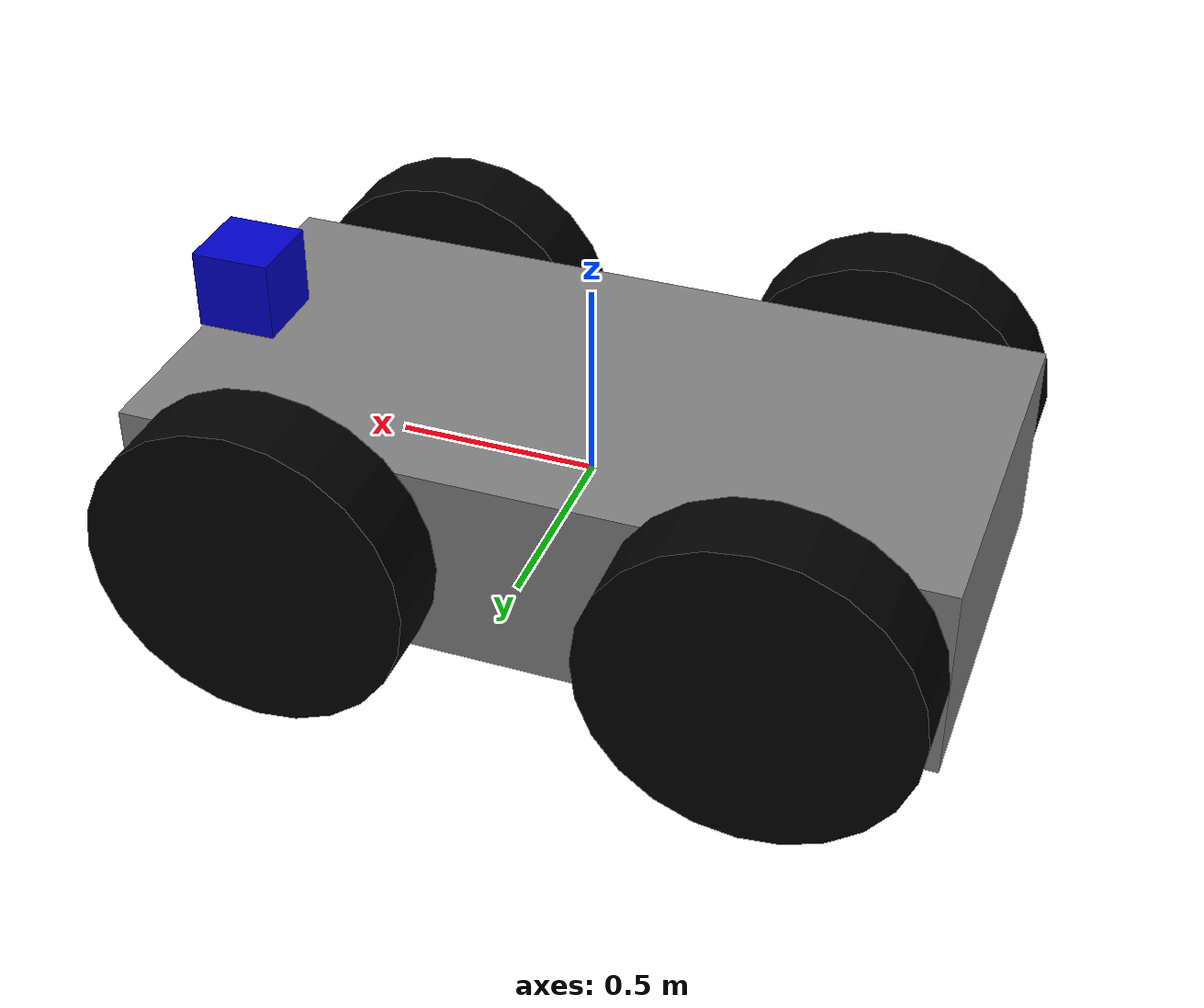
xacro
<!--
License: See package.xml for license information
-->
<?xml version="1.0"?>

<robot name="aruco_bot" xmlns:xacro="http://www.ros.org/wiki/xacro">

  <!-- External File Includes                    -->

  <xacro:include filename="$(find aruco_visual_servoing)/urdf/aruco_bot_skid_steer.gazebo.xacro"/>
  <xacro:include filename="$(find aruco_visual_servoing)/urdf/materials.xacro"/>

  <!-- Robot Geometry Parameters                 -->

  <xacro:property name="WHEEL_RADIUS" value="0.4"/>        <!-- meters -->
  <xacro:property name="WHEEL_WIDTH" value="0.2"/>         <!-- meters -->
  <xacro:property name="BASE_LENGTH" value="2.0"/>         <!-- meters -->
  <xacro:property name="BASE_WIDTH" value="1.0"/>          <!-- meters -->
  <xacro:property name="BASE_HEIGHT" value="0.5"/>         <!-- meters -->
  <xacro:property name="WHEEL_SEPARATION" value="${BASE_WIDTH + WHEEL_WIDTH}"/>
  <xacro:property name="WHEEL_X_OFFSET" value="${(BASE_LENGTH/2) - WHEEL_RADIUS}"/>

  <!-- Mass / inertia approximations -->
  <xacro:property name="BASE_MASS" value="5.0"/>
  <xacro:property name="WHEEL_MASS" value="2.0"/>

  <!-- Mathematical Constants                    -->

  <xacro:property name="PI" value="3.14159265359"/>

  <!-- Base Footprint and Chassis                -->

  <link name="base_footprint"/>

  <joint name="base_joint" type="fixed">
    <parent link="base_footprint"/>
    <child link="base_link"/>
    <origin xyz="0.0 0 0" rpy="0 0 0.0"/>
  </joint>

  <link name="base_link">
    <visual>
      <geometry>
        <box size="${BASE_LENGTH} ${BASE_WIDTH} ${BASE_HEIGHT}"/>
      </geometry>
      <material name="grey"/>
    </visual>
    <collision>
      <geometry>
        <box size="${BASE_LENGTH} ${BASE_WIDTH} ${BASE_HEIGHT}"/>
      </geometry>
    </collision>
    <inertial>
      <mass value="${BASE_MASS}"/>
      <inertia ixx="0.83333" ixy="0" ixz="0" iyy="1.66667" iyz="0" izz="1.66667"/>
    </inertial>
  </link>

  <!-- Wheel Links                               -->

  <!-- Wheel Macro -->
  <xacro:macro name="wheel_link" params="prefix x_location y_location">
    <link name="${prefix}_wheel">
        <visual>
            <geometry>
                <cylinder radius="${WHEEL_RADIUS}" length="${WHEEL_WIDTH}"/>
            </geometry>
            <material name="black"/>
        </visual>
        <collision>
            <geometry>
                <cylinder radius="${WHEEL_RADIUS}" length="${WHEEL_WIDTH}"/>
            </geometry>
        </collision>
        <inertial>
            <mass value="${WHEEL_MASS}"/>
            <inertia ixx="0.145833" ixy="0" ixz="0" iyy="0.145833" iyz="0" izz="0.125"/>
        </inertial>
    </link>

    <joint name="${prefix}_wheel_joint" type="continuous">
        <parent link="base_link"/>
        <child link="${prefix}_wheel"/>
        <origin xyz="${x_location} ${y_location} 0" rpy="-${PI/2} 0 0"/>
        <axis xyz="0 0 1"/>
        <limit effort="100" velocity="10.0"/>
    </joint>
  </xacro:macro>

  <xacro:wheel_link prefix="front_left"  x_location="${WHEEL_X_OFFSET}"  y_location="${WHEEL_SEPARATION/2}"/>
  <xacro:wheel_link prefix="front_right" x_location="${WHEEL_X_OFFSET}"  y_location="-${WHEEL_SEPARATION/2}"/>
  <xacro:wheel_link prefix="rear_left"   x_location="-${WHEEL_X_OFFSET}" y_location="${WHEEL_SEPARATION/2}"/>
  <xacro:wheel_link prefix="rear_right"  x_location="-${WHEEL_X_OFFSET}" y_location="-${WHEEL_SEPARATION/2}"/>

  <!-- Camera Links                              -->

  <!-- Camera Physical Link -->
  <link name="camera_link">
    <visual>
      <geometry>
        <box size="0.2 0.2 0.2"/>
      </geometry>
      <material name="blue"/>
    </visual>
    <collision>
      <geometry>
        <box size="0.2 0.2 0.2"/>
      </geometry>
    </collision>
    <inertial>
      <mass value="0.1"/>
      <inertia ixx="0.001" ixy="0" ixz="0" iyy="0.001" iyz="0" izz="0.001"/>
    </inertial>
  </link>

  <!-- Camera Optical Frame (aligned with camera sensor coordinate system) -->
  <link name="camera_link_optical"/>

  <!-- Robot Joints                              -->

  <!-- Camera Mounting Joint -->
  <joint name="camera_joint" type="fixed">
    <parent link="base_link"/>
    <child link="camera_link"/>
    <origin xyz="0.9 0 0.36" rpy="0 0 0"/>
  </joint>

  <!-- Camera Optical Frame Transformation (ROS standard camera frame alignment) -->
  <joint name="camera_optical_joint" type="fixed">
    <origin xyz="0 0 0" rpy="-${PI/2} 0 -${PI/2}"/>
    <child link="camera_link_optical"/>
    <parent link="camera_link"/>
  </joint>

</robot>

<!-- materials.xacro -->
<robot xmlns:xacro="http://www.ros.org/wiki/xacro">

  <!-- Basic Monochrome Materials                -->

  <material name="black">
    <color rgba="0.0 0.0 0.0 1.0"/>
  </material>

  <material name="white">
    <color rgba="1.0 1.0 1.0 1.0"/>
  </material>

  <material name="grey">
    <color rgba="0.5 0.5 0.5 1.0"/>
  </material>

  <material name="silver">
    <color rgba="0.75 0.75 0.75 1.0"/>
  </material>

  <!-- Primary Color Materials                   -->

  <material name="red">
    <color rgba="0.8 0.0 0.0 1.0"/>
  </material>

  <material name="green">
    <color rgba="0.0 0.8 0.0 1.0"/>
  </material>

  <material name="blue">
    <color rgba="0.0 0.0 0.8 1.0"/>
  </material>

  <!-- Secondary Color Materials                 -->

  <material name="orange">
    <color rgba="1.0 0.423 0.039 1.0"/>
  </material>

  <material name="brown">
    <color rgba="0.871 0.812 0.765 1.0"/>
  </material>

</robot>
